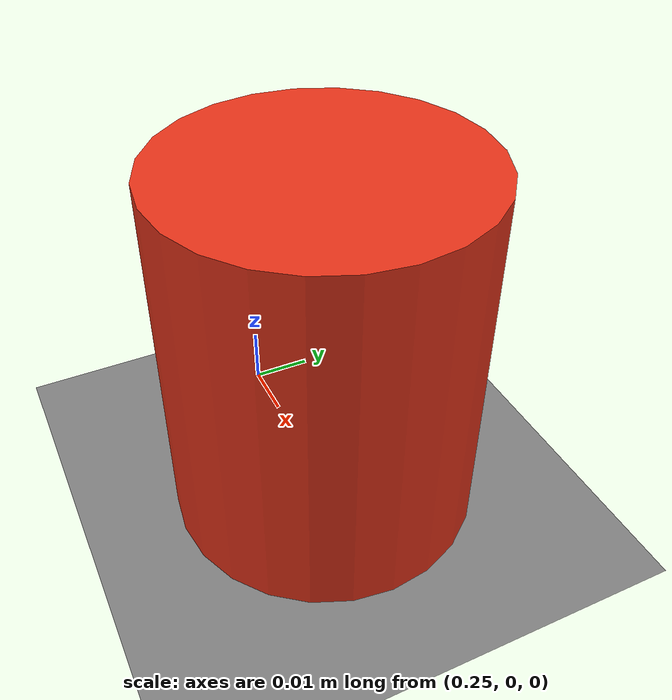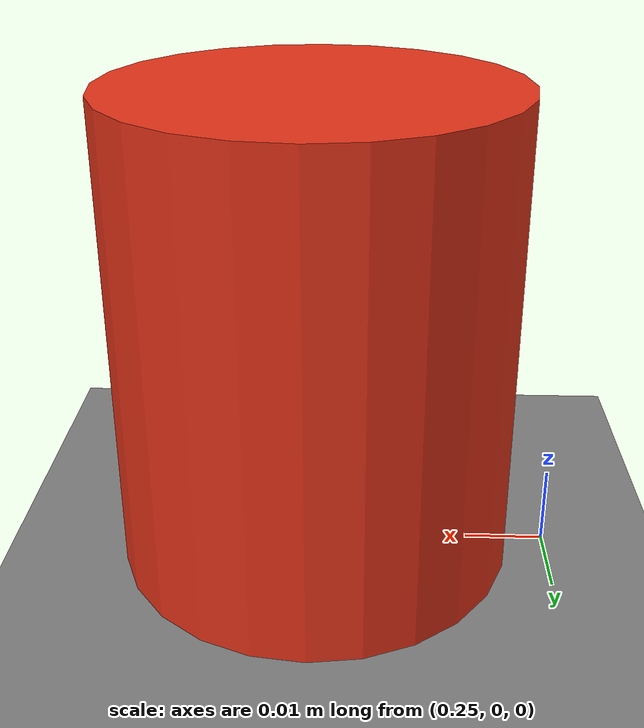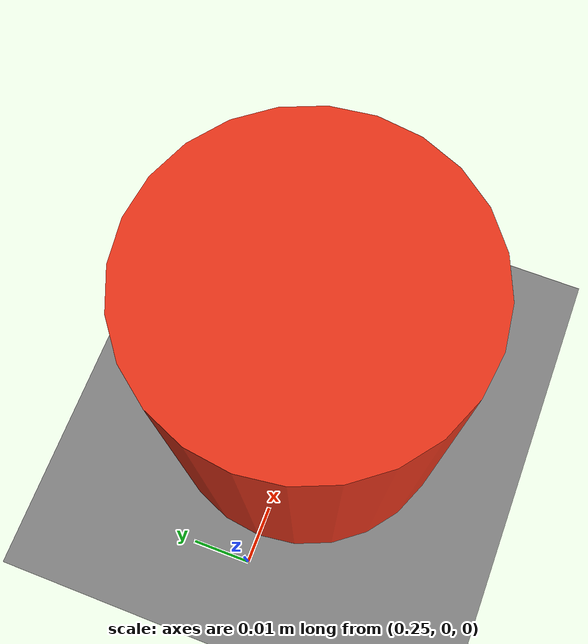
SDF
<?xml version="1.0" ?>
<sdf version="1.11">
  <world name="n1_imu_world">
    <gravity>0 0 -9.8</gravity>

    <plugin filename="gz-sim-physics-system"
            name="gz::sim::systems::Physics" />
    <plugin filename="gz-sim-user-commands-system"
            name="gz::sim::systems::UserCommands" />
    <plugin filename="gz-sim-scene-broadcaster-system"
            name="gz::sim::systems::SceneBroadcaster" />
    <plugin filename="gz-sim-imu-system"
            name="gz::sim::systems::Imu" />
    <plugin filename="gz-sim-sensors-system"
            name="gz::sim::systems::Sensors">
      <render_engine>ogre2</render_engine>
    </plugin>

    <light name="sun" type="directional">
      <cast_shadows>true</cast_shadows>
      <pose>0 0 10 0 0 0</pose>
      <diffuse>0.8 0.8 0.8 1</diffuse>
      <specular>0.2 0.2 0.2 1</specular>
      <attenuation>
        <range>1000</range>
        <constant>0.9</constant>
        <linear>0.01</linear>
        <quadratic>0.001</quadratic>
      </attenuation>
      <direction>-0.5 0.1 -0.9</direction>
    </light>

    <model name="ground_plane">
      <static>true</static>
      <link name="link">
        <collision name="collision">
          <surface>
            <contact><collide_bitmask>0x3f</collide_bitmask></contact>
            <friction>
              <ode>
                <mu>1.0</mu>
                <mu2>1.0</mu2>
              </ode>
            </friction>
          </surface>
          <geometry>
            <plane>
              <normal>0 0 1</normal>
              <size>20 20</size>
            </plane>
          </geometry>
        </collision>
        <visual name="visual">
          <geometry>
            <plane>
              <normal>0 0 1</normal>
              <size>20 20</size>
            </plane>
          </geometry>
          <material>
            <ambient>0.3 0.3 0.3 1</ambient>
            <diffuse>0.5 0.5 0.5 1</diffuse>
          </material>
        </visual>
      </link>
    </model>

    <!-- A free object placed in front of the robot for grasp-planning tests. -->
    <model name="target_cylinder">
      <pose>0.28 0 0.03 0 0 0</pose>
      <link name="link">
        <inertial>
          <mass>0.05</mass>
          <inertia>
            <ixx>0.00001354</ixx>
            <iyy>0.00001354</iyy>
            <izz>0.00001563</izz>
          </inertia>
        </inertial>
        <collision name="collision">
          <surface>
            <friction><ode><mu>0.8</mu><mu2>0.8</mu2></ode></friction>
          </surface>
          <geometry>
            <cylinder>
              <radius>0.025</radius>
              <length>0.06</length>
            </cylinder>
          </geometry>
        </collision>
        <visual name="visual">
          <geometry>
            <cylinder>
              <radius>0.025</radius>
              <length>0.06</length>
            </cylinder>
          </geometry>
          <material>
            <ambient>0.9 0.2 0.1 1</ambient>
            <diffuse>0.9 0.2 0.1 1</diffuse>
          </material>
        </visual>
      </link>
    </model>
  </world>
</sdf>
